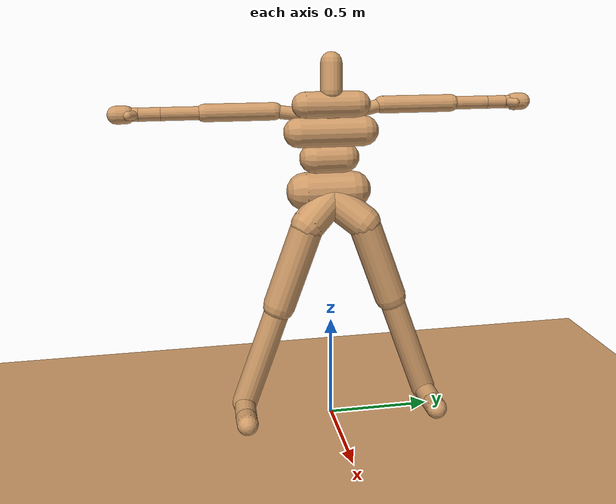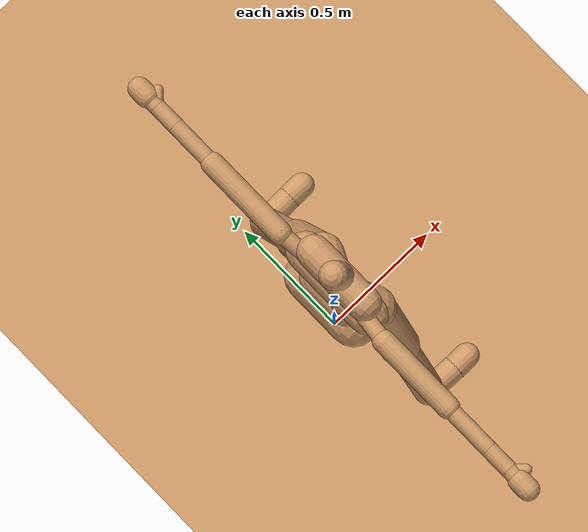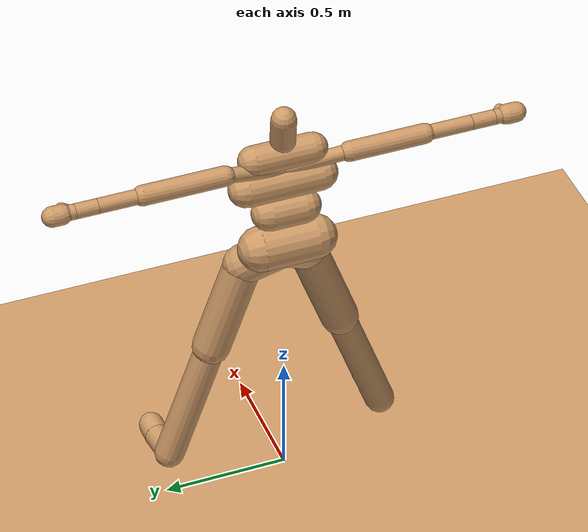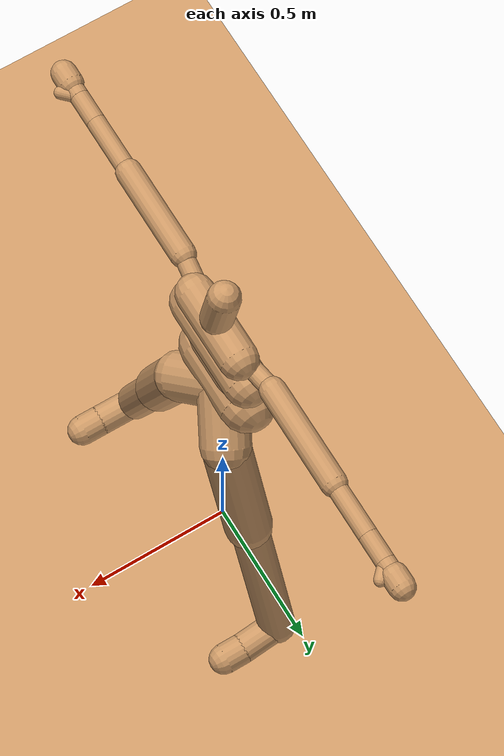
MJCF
<mujoco model="humanoid">
    <compiler angle="degree" inertiafromgeom="true"/>
    <default>
        <joint armature="1" damping="1" limited="true"/>
        <geom conaffinity="1" condim="3" friction="0.8 0.1 0.1" contype="1" margin="0.001" material="geom" rgba="0.8 0.6 .4 1"/>
        <motor ctrllimited="true" ctrlrange="-.4 .4"/>
    </default>
    <option integrator="RK4" iterations="50" solver="PGS" timestep="0.003">
    </option>
    <asset>
        <texture type="skybox" builtin="gradient" width="128" height="128" rgb1=".4 .6 .8"
            rgb2="0 0 0"/>
        <texture name="texgeom" type="cube" builtin="flat" mark="cross" width="127" height="1278"
            rgb1="0.8 0.6 0.4" rgb2="0.8 0.6 0.4" markrgb="1 1 1" random="0.01"/>
        <texture name="texplane" type="2d" builtin="checker" rgb1=".2 .3 .4" rgb2=".1 0.15 0.2"
            width="512" height="512"/>

        <material name='MatPlane' reflectance='0.3' texture="texplane" texrepeat="1 1" texuniform="true"/>
        <material name='geom' texture="texgeom" texuniform="true"/>
    </asset>
    <size nkey="5" nuser_geom="1"/>
    <visual>
        <map fogend="5" fogstart="3"/>
    </visual>
    <worldbody>
        <geom name='floor' pos='0 0 0' size='5 5 .125' type='plane' material="MatPlane" condim='3'/>

        <light mode='targetbodycom' target='torso' directional='false' diffuse='.8 .8 .8' specular='0.3 0.3 0.3' pos='0 0 4.0' dir='0 0 -1'/>

		<camera name='targeting' pos='1 1 2' mode='targetbodycom' target='torso'/>
        <body name="torso" pos="0 0 1.11">
      <joint armature="0" axis="1 0 0" damping="0" limited="false" name="rootx" pos="0 0 0" stiffness="0" type="slide"/>
      <joint armature="0" axis="0 0 1" damping="0" limited="false" name="rootz" pos="0 0 0" ref="1.25" stiffness="0" type="slide"/>
      <joint armature="0" axis="0 1 0" damping="0" limited="false" name="rooty" pos="0 0 1.25" stiffness="0" type="hinge"/>
			<geom contype="0" pos="0 0 0" name="vis_root" size="0.01" type="sphere" rgba=".2 .5 1 1" />
			<body name="lowerback" pos="-0.021 -0.007 0.122">
				<geom fromto="0.0 -0.11 -0.09 0.0 0.11 -0.09" name="lowerback" size="0.09" type="capsule" />
				<geom contype="0" pos="0.021 0.007 -0.122" name="vis_lowerback" size="0.01" type="sphere" rgba=".2 .5 1 1" />
				<joint armature="0.1" damping="4.5" name="lowerback_x" axis="0.0 1.0 0.0" pos="0.021 0.007 -0.122" stiffness="33.83077082487666" type="hinge" range="-20.0 45.0" />
				<joint armature="0.1" damping="4.5" name="lowerback_y" axis="0.0 0.0 1.0" pos="0.021 0.007 -0.122" stiffness="33.83077082487666" type="hinge" range="-30.0 30.0" />
				<joint armature="0.1" damping="4.5" name="lowerback_z" axis="1.0 0.0 0.0" pos="0.021 0.007 -0.122" stiffness="33.83077082487666" type="hinge" range="-30.0 30.0" />
				<body name="upperback" pos="0.01 0.001 0.126">
					<geom fromto="0.0 -0.07 -0.06 0.0 0.07 -0.06" name="upperback" size="0.07" type="capsule" />
					<geom contype="0" pos="-0.01 -0.001 -0.126" name="vis_upperback" size="0.01" type="sphere" rgba=".2 .5 1 1" />
					<joint armature="0.1" damping="4.5" name="upperback_x" axis="0.0 1.0 0.0" pos="-0.01 -0.001 -0.126" stiffness="30.941527168673854" type="hinge" range="-20.0 45.0" />
					<joint armature="0.1" damping="4.5" name="upperback_y" axis="0.0 0.0 1.0" pos="-0.01 -0.001 -0.126" stiffness="30.941527168673854" type="hinge" range="-30.0 30.0" />
					<joint armature="0.1" damping="4.5" name="upperback_z" axis="1.0 0.0 0.0" pos="-0.01 -0.001 -0.126" stiffness="30.941527168673854" type="hinge" range="-30.0 30.0" />
					<body name="thorax" pos="0.02 0.005 0.123">
						<geom fromto="0.0 -0.15 -0.06 0.0 0.15 -0.06" name="thorax" size="0.07" type="capsule" />
						<geom contype="0" pos="-0.02 -0.005 -0.123" name="vis_thorax" size="0.01" type="sphere" rgba=".2 .5 1 1" />
						<joint armature="0.1" damping="4.5" name="thorax_x" axis="0.0 1.0 0.0" pos="-0.02 -0.005 -0.123" stiffness="32.92455687003865" type="hinge" range="-20.0 45.0" />
						<joint armature="0.1" damping="4.5" name="thorax_y" axis="0.0 0.0 1.0" pos="-0.02 -0.005 -0.123" stiffness="32.92455687003865" type="hinge" range="-30.0 30.0" />
						<joint armature="0.1" damping="4.5" name="thorax_z" axis="1.0 0.0 0.0" pos="-0.02 -0.005 -0.123" stiffness="32.92455687003865" type="hinge" range="-30.0 30.0" />
						<body name="lowerneck" pos="0.008 -0.002 0.122">
							<geom fromto="0.0 -0.12 -0.06 0.0 0.12 -0.06" name="lowerneck" size="0.06" type="capsule" />
							<geom contype="0" pos="-0.008 0.002 -0.122" name="vis_lowerneck" size="0.01" type="sphere" rgba=".2 .5 1 1" />
							<joint armature="0.1" damping="0.5" name="lowerneck_x" axis="0.0 1.0 0.0" pos="-0.008 0.002 -0.122" stiffness="35.603801929157775" type="hinge" range="-20.0 45.0" />
							<joint armature="0.1" damping="0.5" name="lowerneck_y" axis="0.0 0.0 1.0" pos="-0.008 0.002 -0.122" stiffness="35.603801929157775" type="hinge" range="-30.0 30.0" />
							<joint armature="0.1" damping="0.5" name="lowerneck_z" axis="1.0 0.0 0.0" pos="-0.008 0.002 -0.122" stiffness="35.603801929157775" type="hinge" range="-30.0 30.0" />
							<body name="upperneck" pos="-0.022 0.004 0.121">
								<geom fromto="0.022 -0.004 -0.121 0 0 0" name="upperneck" size="0.05" type="capsule" />
								<geom contype="0" pos="0.022 -0.004 -0.121" name="vis_upperneck" size="0.01" type="sphere" rgba=".2 .5 1 1" />
								<joint armature="0.1" damping="0.5" name="upperneck_x" axis="0.0 1.0 0.0" pos="0.022 -0.004 -0.121" stiffness="34.95552447049497" type="hinge" range="-20.0 45.0" />
								<joint armature="0.1" damping="0.5" name="upperneck_y" axis="0.0 0.0 1.0" pos="0.022 -0.004 -0.121" stiffness="34.95552447049497" type="hinge" range="-30.0 30.0" />
								<joint armature="0.1" damping="0.5" name="upperneck_z" axis="1.0 0.0 0.0" pos="0.022 -0.004 -0.121" stiffness="34.95552447049497" type="hinge" range="-30.0 30.0" />
								<body name="head" pos="-0.008 0.001 0">
									<geom name="head" size="0.01" type="sphere" />
									<geom contype="0" pos="0.008 -0.001 -0.123" name="vis_head" size="0.01" type="sphere" rgba=".2 .5 1 1" />
									<joint armature="0.1" damping="0.5" name="head_x" axis="0.0 1.0 0.0" pos="0.008 -0.001 -0.123" stiffness="33.68230668604391" type="hinge" range="-20.0 45.0" />
									<joint armature="0.1" damping="0.5" name="head_y" axis="0.0 0.0 1.0" pos="0.008 -0.001 -0.123" stiffness="33.68230668604391" type="hinge" range="-30.0 30.0" />
									<joint armature="0.1" damping="0.5" name="head_z" axis="1.0 0.0 0.0" pos="0.008 -0.001 -0.123" stiffness="33.68230668604391" type="hinge" range="-30.0 30.0" />
 								</body>
 							</body>
						</body>

						<body name="lclavicle" pos="-0.028 0.243 0.053">
							<geom fromto="0.028 -0.243 -0.053 0 0 0" name="lclavicle" size="0.03" type="capsule" />
							<geom contype="0" pos="0.028 -0.243 -0.053" name="vis_lclavicle" size="0.01" type="sphere" rgba=".2 .5 1 1" />
							<joint armature="0.1" damping="0.5" name="lclavicle_y" axis="0.0 0.0 1.0" pos="0.028 -0.243 -0.053" stiffness="2.012028392586424" type="hinge" range="-20.0 10.0" />
							<joint armature="0.1" damping="0.5" name="lclavicle_z" axis="1.0 0.0 0.0" pos="0.028 -0.243 -0.053" stiffness="2.012028392586424" type="hinge" range="0.0 20.0" />
							<body name="lhumerus" pos="0.0 0.328 -0.0">
								<geom fromto="-0.0 -0.328 0.0 0 0 0" name="lhumerus" size="0.04" type="capsule" />
								<geom contype="0" pos="-0.0 -0.328 0.0" name="vis_lhumerus" size="0.01" type="sphere" rgba=".2 .5 1 1" />
								<joint armature="0.1" damping="0.5" name="lhumerus_x" axis="0.5 0.0 -0.866" pos="-0.0 -0.328 0.0" stiffness="0.6805308084295885" type="hinge" range="-60.0 90.0" />
								<joint armature="0.1" damping="0.5" name="lhumerus_y" axis="0.0 -1.0 0.0" pos="-0.0 -0.328 0.0" stiffness="0.6805308084295885" type="hinge" range="-90.0 90.0" />
								<joint armature="0.1" damping="0.5" name="lhumerus_z" axis="-0.866 -0.0 -0.5" pos="-0.0 -0.328 0.0" stiffness="0.6805308084295885" type="hinge" range="-90.0 90.0" />
								<body name="lradius" pos="0.0 0.177 -0.0">
									<geom fromto="-0.0 -0.177 0.0 0 0 0" name="lradius" size="0.03" type="capsule" />
									<geom contype="0" pos="-0.0 -0.177 0.0" name="vis_lradius" size="0.01" type="sphere" rgba=".2 .5 1 1" />
									<joint armature="0.1" damping="0.5" name="lradius_x" axis="0.5 0.0 -0.866" pos="-0.0 -0.177 0.0" stiffness="8.010694435953429" type="hinge" range="-10.0 170.0" />
									<body name="lwrist" pos="0.0 0.089 -0.0">
										<geom fromto="-0.0 -0.089 0.0 0 0 0" name="lwrist" size="0.03" type="capsule" />
										<geom contype="0" pos="-0.0 -0.089 0.0" name="vis_lwrist" size="0.01" type="sphere" rgba=".2 .5 1 1" />
										<joint armature="0.1" damping="0.5" name="lwrist_y" axis="0.0 -1.0 -0.0" pos="-0.0 -0.089 0.0" stiffness="128.17111097525486" type="hinge" range="-180.0 0.0" />
										<body name="lhand" pos="0.0 0.049 -0.0">
											<geom fromto="-0.0 -0.049 0.0 0 0 0" name="lhand" size="0.03" type="capsule" />
											<geom contype="0" pos="-0.0 -0.049 0.0" name="vis_lhand" size="0.01" type="sphere" rgba=".2 .5 1 1" />
											<joint armature="0.1" damping="0.5" name="lhand_x" axis="-1.0 0.0 0.0" pos="-0.0 -0.049 0.0" stiffness="1382.3505978453854" type="hinge" range="-90.0 90.0" />
											<joint armature="0.1" damping="0.5" name="lhand_z" axis="0.0 -0.0 1.0" pos="-0.0 -0.049 0.0" stiffness="1382.3505978453854" type="hinge" range="-45.0 45.0" />
											<body name="lfingers" pos="0.0 0.039 -0.0">
												<geom fromto="-0.0 -0.039 0.0 0 0 0" name="lfingers" size="0.04" type="capsule" />
												<geom contype="0" pos="-0.0 -0.039 0.0" name="vis_lfingers" size="0.01" type="sphere" rgba=".2 .5 1 1" />
												<joint armature="0.1" damping="0.5" name="lfingers_x" axis="-1.0 0.0 0.0" pos="-0.0 -0.039 0.0" stiffness="3271.848764335726" type="hinge" range="0.0 90.0" />
 											</body>
 										</body>

										<body name="lthumb" pos="0.04 0.04 -0.0">
											<geom fromto="-0.04 -0.04 0.0 0 0 0" name="lthumb" size="0.02" type="capsule" />
											<geom contype="0" pos="-0.04 -0.04 0.0" name="vis_lthumb" size="0.01" type="sphere" rgba=".2 .5 1 1" />
											<joint armature="0.1" damping="0.5" name="lthumb_x" axis="-0.707 0.707 -0.0" pos="-0.04 -0.04 0.0" stiffness="769.85470621569" type="hinge" range="-45.0 45.0" />
											<joint armature="0.1" damping="0.5" name="lthumb_z" axis="0.0 0.0 1.0" pos="-0.04 -0.04 0.0" stiffness="769.85470621569" type="hinge" range="-45.0 45.0" />
 										</body>
 									</body>
 								</body>
 							</body>
						</body>

						<body name="rclavicle" pos="-0.031 -0.256 0.034">
							<geom fromto="0.031 0.256 -0.034 0 0 0" name="rclavicle" size="0.03" type="capsule" />
							<geom contype="0" pos="0.031 0.256 -0.034" name="vis_rclavicle" size="0.01" type="sphere" rgba=".2 .5 1 1" />
							<joint armature="0.1" damping="0.5" name="rclavicle_y" axis="0.0 0.0 1.0" pos="0.031 0.256 -0.034" stiffness="1.729735682259958" type="hinge" range="-10.0 20.0" />
							<joint armature="0.1" damping="0.5" name="rclavicle_z" axis="1.0 0.0 0.0" pos="0.031 0.256 -0.034" stiffness="1.729735682259958" type="hinge" range="-20.0 0.0" />
							<body name="rhumerus" pos="0.0 -0.309 -0.0">
								<geom fromto="-0.0 0.309 0.0 0 0 0" name="rhumerus" size="0.04" type="capsule" />
								<geom contype="0" pos="-0.0 0.309 0.0" name="vis_rhumerus" size="0.01" type="sphere" rgba=".2 .5 1 1" />
								<joint armature="0.1" damping="0.5" name="rhumerus_x" axis="-0.5 0.0 0.866" pos="-0.0 0.309 0.0" stiffness="0.8659070860042668" type="hinge" range="-90.0 60.0" />
								<joint armature="0.1" damping="0.5" name="rhumerus_y" axis="0.0 1.0 0.0" pos="-0.0 0.309 0.0" stiffness="0.8659070860042668" type="hinge" range="-90.0 90.0" />
								<joint armature="0.1" damping="0.5" name="rhumerus_z" axis="-0.866 0.0 -0.5" pos="-0.0 0.309 0.0" stiffness="0.8659070860042668" type="hinge" range="-90.0 90.0" />
								<body name="rradius" pos="-0.0 -0.191 -0.0">
									<geom fromto="0.0 0.191 0.0 0 0 0" name="rradius" size="0.03" type="capsule" />
									<geom contype="0" pos="0.0 0.191 0.0" name="vis_rradius" size="0.01" type="sphere" rgba=".2 .5 1 1" />
									<joint armature="0.1" damping="0.5" name="rradius_x" axis="-0.5 0.0 0.866" pos="0.0 0.191 0.0" stiffness="5.958274283351953" type="hinge" range="-10.0 170.0" />
									<body name="rwrist" pos="0.0 -0.095 -0.0">
										<geom fromto="-0.0 0.095 0.0 0 0 0" name="rwrist" size="0.03" type="capsule" />
										<geom contype="0" pos="-0.0 0.095 0.0" name="vis_rwrist" size="0.01" type="sphere" rgba=".2 .5 1 1" />
										<joint armature="0.1" damping="0.5" name="rwrist_y" axis="0.0 1.0 -0.0" pos="-0.0 0.095 0.0" stiffness="95.33372073349155" type="hinge" range="-180.0 0.0" />
										<body name="rthumb" pos="0.041 -0.041 -0.0">
											<geom fromto="-0.041 0.041 0.0 0 0 0" name="rthumb" size="0.02" type="capsule" />
											<geom contype="0" pos="-0.041 0.041 0.0" name="vis_rthumb" size="0.01" type="sphere" rgba=".2 .5 1 1" />
											<joint armature="0.1" damping="0.5" name="rthumb_x" axis="0.707 0.707 0.0" pos="-0.041 0.041 0.0" stiffness="671.5725370406799" type="hinge" range="-45.0 45.0" />
											<joint armature="0.1" damping="0.5" name="rthumb_z" axis="0.0 -0.0 1.0" pos="-0.041 0.041 0.0" stiffness="671.5725370406799" type="hinge" range="-45.0 45.0" />
 										</body>

										<body name="rhand" pos="0.0 -0.051 -0.0">
											<geom fromto="-0.0 0.051 0.0 0 0 0" name="rhand" size="0.03" type="capsule" />
											<geom contype="0" pos="-0.0 0.051 0.0" name="vis_rhand" size="0.01" type="sphere" rgba=".2 .5 1 1" />
											<joint armature="0.1" damping="0.5" name="rhand_x" axis="1.0 0.0 0.0" pos="-0.0 0.051 0.0" stiffness="1205.8719094761386" type="hinge" range="-90.0 90.0" />
											<joint armature="0.1" damping="0.5" name="rhand_z" axis="0.0 0.0 1.0" pos="-0.0 0.051 0.0" stiffness="1205.8719094761386" type="hinge" range="-45.0 45.0" />
											<body name="rfingers" pos="0.0 -0.041 -0.0">
												<geom fromto="-0.0 0.041 0.0 0 0 0" name="rfingers" size="0.04" type="capsule" />
												<geom contype="0" pos="-0.0 0.041 0.0" name="vis_rfingers" size="0.01" type="sphere" rgba=".2 .5 1 1" />
												<joint armature="0.1" damping="0.5" name="rfingers_x" axis="1.0 0.0 0.0" pos="-0.0 0.041 0.0" stiffness="2854.1346326179755" type="hinge" range="0.0 90.0" />
 											</body>
 										</body>
 									</body>
 								</body>
 							</body>
						</body>
					</body>
				</body>
			</body>

			<body name="rhipjoint" pos="0.074 -0.124 -0.106">
				<geom fromto="-0.074 0.124 0.106 0 0 0" name="rhipjoint" size="0.08" type="capsule" />
				<geom contype="0" pos="-0.074 0.124 0.106" name="vis_rhipjoint" size="0.01" type="sphere" rgba=".2 .5 1 1" />
				<body name="rfemur" pos="0.0 -0.14 -0.383">
					<geom fromto="-0.0 0.14 0.383 0 0 0" name="rfemur" size="0.076" type="capsule" />
					<geom contype="0" pos="-0.0 0.14 0.383" name="vis_rfemur" size="0.01" type="sphere" rgba=".2 .5 1 1" />
					<joint armature="0.1" damping="0.5" name="rfemur_x" axis="0.0 0.94 -0.342" pos="-0.0 0.14 0.383" stiffness="0.28507598521808314" type="hinge" range="-160.0 20.0" />
					<joint armature="0.1" damping="0.5" name="rfemur_y" axis="0.0 0.342 0.94" pos="-0.0 0.14 0.383" stiffness="0.28507598521808314" type="hinge" range="-70.0 70.0" />
					<joint armature="0.1" damping="0.5" name="rfemur_z" axis="1.0 0.0 0.0" pos="-0.0 0.14 0.383" stiffness="0.28507598521808314" type="hinge" range="-70.0 60.0" />
					<body name="rtibia" pos="0.0 -0.177 -0.486">
						<geom fromto="-0.0 0.177 0.486 0 0 0" name="rtibia" size="0.06" type="capsule" />
						<geom contype="0" pos="-0.0 0.177 0.486" name="vis_rtibia" size="0.01" type="sphere" rgba=".2 .5 1 1" />
						<joint armature="0.1" damping="0.5" name="rtibia_x" axis="0.0 0.94 -0.342" pos="-0.0 0.177 0.486" stiffness="0.1103630134642327" type="hinge" range="-10.0 170.0" />
						<body name="rfoot" pos="0.13 -0.006 -0.016">
							<geom fromto="-0.13 0.006 0.016 0 0 0" name="rfoot" size="0.05" type="capsule" />
							<geom contype="0" pos="-0.13 0.006 0.016" name="vis_rfoot" size="0.01" type="sphere" rgba=".2 .5 1 1" />
							<joint armature="0.1" damping="0.5" name="rfoot_x" axis="0.0 0.94 -0.342" pos="-0.13 0.006 0.016" stiffness="26.417703993271576" type="hinge" range="-45.0 90.0" />
							<joint armature="0.1" damping="0.5" name="rfoot_z" axis="0.0 0.342 0.94" pos="-0.13 0.006 0.016" stiffness="26.417703993271576" type="hinge" range="-20.0 70.0" />
							<body name="rtoes" pos="0.067 -0.0 -0.0">
								<geom fromto="-0.067 0.0 0.0 0 0 0" name="rtoes" size="0.05" type="capsule" />
								<geom contype="0" pos="-0.067 0.0 0.0" name="vis_rtoes" size="0.01" type="sphere" rgba=".2 .5 1 1" />
								<joint armature="0.1" damping="0.5" name="rtoes_x" axis="0.0 0.94 -0.342" pos="-0.067 0.0 0.0" stiffness="401.1621055524974" type="hinge" range="-90.0 20.0" />
							</body>
						</body>
					</body>
				</body>
			</body>

			<body name="lhipjoint" pos="0.074 0.14 -0.106">
				<geom fromto="-0.074 -0.14 0.106 0 0 0" name="lhipjoint" size="0.08" type="capsule" />
				<geom contype="0" pos="-0.074 -0.14 0.106" name="vis_lhipjoint" size="0.01" type="sphere" rgba=".2 .5 1 1" />
				<body name="lfemur" pos="0.0 0.136 -0.373">
					<geom fromto="-0.0 -0.136 0.373 0 0 0" name="lfemur" size="0.076" type="capsule" />
					<geom contype="0" pos="-0.0 -0.136 0.373" name="vis_lfemur" size="0.01" type="sphere" rgba=".2 .5 1 1" />
					<joint armature="0.1" damping="0.5" name="lfemur_x" axis="0.0 0.94 0.342" pos="-0.0 -0.136 0.373" stiffness="0.3183275825245205" type="hinge" range="-160.0 20.0" />
					<joint armature="0.1" damping="0.5" name="lfemur_y" axis="0.0 -0.342 0.94" pos="-0.0 -0.136 0.373" stiffness="0.3183275825245205" type="hinge" range="-70.0 70.0" />
					<joint armature="0.1" damping="0.5" name="lfemur_z" axis="1.0 0.0 0.0" pos="-0.0 -0.136 0.373" stiffness="0.3183275825245205" type="hinge" range="-60.0 70.0" />
					<body name="ltibia" pos="0.0 0.183 -0.503">
						<geom fromto="-0.0 -0.183 0.503 0 0 0" name="ltibia" size="0.06" type="capsule" />
						<geom contype="0" pos="-0.0 -0.183 0.503" name="vis_ltibia" size="0.01" type="sphere" rgba=".2 .5 1 1" />
						<joint armature="0.1" damping="0.5" name="ltibia_x" axis="0.0 0.94 0.342" pos="-0.0 -0.183 0.503" stiffness="0.09660960686915877" type="hinge" range="-10.0 170.0" />
						<body name="lfoot" pos="0.133 0.006 -0.017">
							<geom fromto="-0.133 -0.006 0.017 0 0 0" name="lfoot" size="0.05" type="capsule" />
							<geom contype="0" pos="-0.133 -0.006 0.017" name="vis_lfoot" size="0.01" type="sphere" rgba=".2 .5 1 1" />
							<joint armature="0.1" damping="0.5" name="lfoot_x" axis="-0.0 0.94 0.342" pos="-0.133 -0.006 0.017" stiffness="24.5506176838375" type="hinge" range="-45.0 90.0" />
							<joint armature="0.1" damping="0.5" name="lfoot_z" axis="0.0 -0.342 0.94" pos="-0.133 -0.006 0.017" stiffness="24.5506176838375" type="hinge" range="-70.0 20.0" />
							<body name="ltoes" pos="0.068 0.0 -0.0">
								<geom fromto="-0.068 -0.0 0.0 0 0 0" name="ltoes" size="0.05" type="capsule" />
								<geom contype="0" pos="-0.068 -0.0 0.0" name="vis_ltoes" size="0.01" type="sphere" rgba=".2 .5 1 1" />
								<joint armature="0.1" damping="0.5" name="ltoes_x" axis="-0.0 0.94 0.342" pos="-0.068 -0.0 0.0" stiffness="373.7708034312325" type="hinge" range="-90.0 20.0" />
							</body>
						</body>
					</body>
				</body>
			</body>
		</body>
	</worldbody>
    <tendon>
    </tendon>
    <actuator><!-- this section is not supported, same constants in code -->
		<motor gear="20" ctrlrange="-1.0 1.0" joint="lowerback_x" name="lowerback_x"/>
		<motor gear="20" ctrlrange="-1.0 1.0" joint="lowerback_y" name="lowerback_y"/>
		<motor gear="20" ctrlrange="-1.0 1.0" joint="lowerback_z" name="lowerback_z"/>
		<motor gear="20" ctrlrange="-1.0 1.0" joint="lowerneck_x" name="lowerneck_x"/>
		<motor gear="20" ctrlrange="-1.0 1.0" joint="lowerneck_y" name="lowerneck_y"/>
		<motor gear="20" ctrlrange="-1.0 1.0" joint="lowerneck_z" name="lowerneck_z"/>
		<motor gear="20" ctrlrange="-1.0 1.0" joint="rfoot_x" name="rfoot_x"/>
		<motor gear="0" ctrlrange="-1.0 1.0" joint="rfoot_z" name="rfoot_z"/>
		<motor gear="100" ctrlrange="-1.0 1.0" joint="lwrist_y" name="lwrist_y"/>
		<motor gear="100" ctrlrange="-1.0 1.0" joint="lhumerus_x" name="lhumerus_x"/>
		<motor gear="100" ctrlrange="-1.0 1.0" joint="lhumerus_y" name="lhumerus_y"/>
		<motor gear="100" ctrlrange="-1.0 1.0" joint="lhumerus_z" name="lhumerus_z"/>
		<motor gear="100" ctrlrange="-1.0 1.0" joint="rclavicle_y" name="rclavicle_y"/>
		<motor gear="100" ctrlrange="-1.0 1.0" joint="rclavicle_z" name="rclavicle_z"/>
		<motor gear="20" ctrlrange="-1.0 1.0" joint="lfoot_x" name="lfoot_x"/>
		<motor gear="0" ctrlrange="-1.0 1.0" joint="lfoot_z" name="lfoot_z"/>
		<motor gear="100" ctrlrange="-1.0 1.0" joint="lhand_x" name="lhand_x"/>
		<motor gear="100" ctrlrange="-1.0 1.0" joint="lhand_z" name="lhand_z"/>
		<motor gear="100" ctrlrange="-1.0 1.0" joint="lfingers_x" name="lfingers_x"/>
		<motor gear="60" ctrlrange="-1.0 1.0" joint="rtibia_x" name="rtibia_x"/>
		<motor gear="60" ctrlrange="-1.0 1.0" joint="ltibia_x" name="ltibia_x"/>
		<motor gear="100" ctrlrange="-1.0 1.0" joint="rfingers_x" name="rfingers_x"/>
		<motor gear="20" ctrlrange="-1.0 1.0" joint="upperback_x" name="upperback_x"/>
		<motor gear="20" ctrlrange="-1.0 1.0" joint="upperback_y" name="upperback_y"/>
		<motor gear="20" ctrlrange="-1.0 1.0" joint="upperback_z" name="upperback_z"/>
		<motor gear="100" ctrlrange="-1.0 1.0" joint="rradius_x" name="rradius_x"/>
		<motor gear="100" ctrlrange="-1.0 1.0" joint="rwrist_y" name="rwrist_y"/>
		<motor gear="100" ctrlrange="-1.0 1.0" joint="lthumb_x" name="lthumb_x"/>
		<motor gear="100" ctrlrange="-1.0 1.0" joint="lthumb_z" name="lthumb_z"/>
		<motor gear="60" ctrlrange="-1.0 1.0" joint="rfemur_x" name="rfemur_x"/>
		<motor gear="60" ctrlrange="-1.0 1.0" joint="rfemur_y" name="rfemur_y"/>
		<motor gear="60" ctrlrange="-1.0 1.0" joint="rfemur_z" name="rfemur_z"/>
		<motor gear="20" ctrlrange="-1.0 1.0" joint="thorax_x" name="thorax_x"/>
		<motor gear="20" ctrlrange="-1.0 1.0" joint="thorax_y" name="thorax_y"/>
		<motor gear="20" ctrlrange="-1.0 1.0" joint="thorax_z" name="thorax_z"/>
		<motor gear="100" ctrlrange="-1.0 1.0" joint="rhumerus_x" name="rhumerus_x"/>
		<motor gear="100" ctrlrange="-1.0 1.0" joint="rhumerus_y" name="rhumerus_y"/>
		<motor gear="100" ctrlrange="-1.0 1.0" joint="rhumerus_z" name="rhumerus_z"/>
		<motor gear="20" ctrlrange="-1.0 1.0" joint="upperneck_x" name="upperneck_x"/>
		<motor gear="20" ctrlrange="-1.0 1.0" joint="upperneck_y" name="upperneck_y"/>
		<motor gear="20" ctrlrange="-1.0 1.0" joint="upperneck_z" name="upperneck_z"/>
		<motor gear="100" ctrlrange="-1.0 1.0" joint="rhand_x" name="rhand_x"/>
		<motor gear="100" ctrlrange="-1.0 1.0" joint="rhand_z" name="rhand_z"/>
		<motor gear="100" ctrlrange="-1.0 1.0" joint="lclavicle_y" name="lclavicle_y"/>
		<motor gear="100" ctrlrange="-1.0 1.0" joint="lclavicle_z" name="lclavicle_z"/>
		<motor gear="100" ctrlrange="-1.0 1.0" joint="head_x" name="head_x"/>
		<motor gear="100" ctrlrange="-1.0 1.0" joint="head_y" name="head_y"/>
		<motor gear="100" ctrlrange="-1.0 1.0" joint="head_z" name="head_z"/>
		<motor gear="20" ctrlrange="-1.0 1.0" joint="rtoes_x" name="rtoes_x"/>
		<motor gear="100" ctrlrange="-1.0 1.0" joint="lradius_x" name="lradius_x"/>
		<motor gear="20" ctrlrange="-1.0 1.0" joint="ltoes_x" name="ltoes_x"/>
		<motor gear="60" ctrlrange="-1.0 1.0" joint="lfemur_x" name="lfemur_x"/>
		<motor gear="60" ctrlrange="-1.0 1.0" joint="lfemur_y" name="lfemur_y"/>
		<motor gear="60" ctrlrange="-1.0 1.0" joint="lfemur_z" name="lfemur_z"/>
		<motor gear="100" ctrlrange="-1.0 1.0" joint="rthumb_x" name="rthumb_x"/>
		<motor gear="100" ctrlrange="-1.0 1.0" joint="rthumb_z" name="rthumb_z"/>
    </actuator>
</mujoco>
